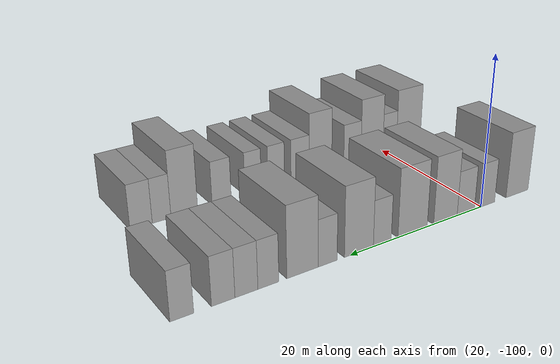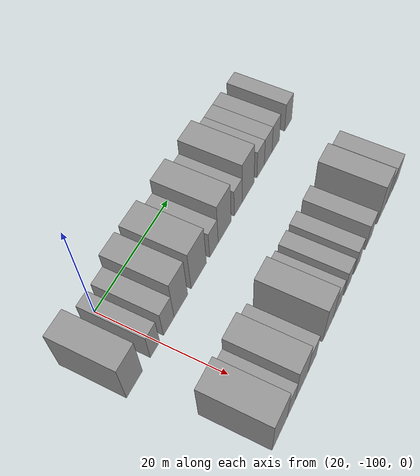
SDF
<sdf version="1.6">
 <world name="default">
  <model name="building_27">
   <static>1</static>
   <pose>25.0000 -106.3323 0 0.000000 0.000000 0.000000</pose>
   <link name="link">
    <pose>0 0 4.50 0 0 0</pose>
    <collision name="collision"><geometry><box><size>10.0000 3.9485 9.0000</size></box></geometry></collision>
    <visual name="visual">
     <cast_shadows>0</cast_shadows>
     <geometry><box><size>10.0000 3.9485 9.0000</size></box></geometry>
     <material>
      <script>
       <uri>model://grey_wall/materials/scripts</uri>
       <uri>model://grey_wall/materials/textures</uri>
       <name>vrc/grey_wall</name>
      </script>
     </material>
    </visual>
   </link>
  </model>
  <model name="building_28">
   <static>1</static>
   <pose>25.0000 -101.1371 0 0.000000 0.000000 0.000000</pose>
   <link name="link">
    <pose>0 0 3.00 0 0 0</pose>
    <collision name="collision"><geometry><box><size>10.0000 2.4418 6.0000</size></box></geometry></collision>
    <visual name="visual">
     <cast_shadows>0</cast_shadows>
     <geometry><box><size>10.0000 2.4418 6.0000</size></box></geometry>
     <material>
      <script>
       <uri>model://grey_wall/materials/scripts</uri>
       <uri>model://grey_wall/materials/textures</uri>
       <name>vrc/grey_wall</name>
      </script>
     </material>
    </visual>
   </link>
  </model>
  <model name="building_29">
   <static>1</static>
   <pose>25.0000 -97.4838 0 0.000000 0.000000 0.000000</pose>
   <link name="link">
    <pose>0 0 3.00 0 0 0</pose>
    <collision name="collision"><geometry><box><size>10.0000 2.8649 6.0000</size></box></geometry></collision>
    <visual name="visual">
     <cast_shadows>0</cast_shadows>
     <geometry><box><size>10.0000 2.8649 6.0000</size></box></geometry>
     <material>
      <script>
       <uri>model://grey_wall/materials/scripts</uri>
       <uri>model://grey_wall/materials/textures</uri>
       <name>vrc/grey_wall</name>
      </script>
     </material>
    </visual>
   </link>
  </model>
  <model name="building_30">
   <static>1</static>
   <pose>25.0000 -94.1622 0 0.000000 0.000000 0.000000</pose>
   <link name="link">
    <pose>0 0 4.50 0 0 0</pose>
    <collision name="collision"><geometry><box><size>10.0000 3.7783 9.0000</size></box></geometry></collision>
    <visual name="visual">
     <cast_shadows>0</cast_shadows>
     <geometry><box><size>10.0000 3.7783 9.0000</size></box></geometry>
     <material>
      <script>
       <uri>model://grey_wall/materials/scripts</uri>
       <uri>model://grey_wall/materials/textures</uri>
       <name>vrc/grey_wall</name>
      </script>
     </material>
    </visual>
   </link>
  </model>
  <model name="building_31">
   <static>1</static>
   <pose>25.0000 -89.0398 0 0.000000 0.000000 0.000000</pose>
   <link name="link">
    <pose>0 0 4.50 0 0 0</pose>
    <collision name="collision"><geometry><box><size>10.0000 4.4664 9.0000</size></box></geometry></collision>
    <visual name="visual">
     <cast_shadows>0</cast_shadows>
     <geometry><box><size>10.0000 4.4664 9.0000</size></box></geometry>
     <material>
      <script>
       <uri>model://grey_wall/materials/scripts</uri>
       <uri>model://grey_wall/materials/textures</uri>
       <name>vrc/grey_wall</name>
      </script>
     </material>
    </visual>
   </link>
  </model>
  <model name="building_32">
   <static>1</static>
   <pose>25.0000 -84.5046 0 0.000000 0.000000 0.000000</pose>
   <link name="link">
    <pose>0 0 3.00 0 0 0</pose>
    <collision name="collision"><geometry><box><size>10.0000 2.6039 6.0000</size></box></geometry></collision>
    <visual name="visual">
     <cast_shadows>0</cast_shadows>
     <geometry><box><size>10.0000 2.6039 6.0000</size></box></geometry>
     <material>
      <script>
       <uri>model://grey_wall/materials/scripts</uri>
       <uri>model://grey_wall/materials/textures</uri>
       <name>vrc/grey_wall</name>
      </script>
     </material>
    </visual>
   </link>
  </model>
  <model name="building_33">
   <static>1</static>
   <pose>25.0000 -81.1677 0 0.000000 0.000000 0.000000</pose>
   <link name="link">
    <pose>0 0 4.50 0 0 0</pose>
    <collision name="collision"><geometry><box><size>10.0000 4.0699 9.0000</size></box></geometry></collision>
    <visual name="visual">
     <cast_shadows>0</cast_shadows>
     <geometry><box><size>10.0000 4.0699 9.0000</size></box></geometry>
     <material>
      <script>
       <uri>model://grey_wall/materials/scripts</uri>
       <uri>model://grey_wall/materials/textures</uri>
       <name>vrc/grey_wall</name>
      </script>
     </material>
    </visual>
   </link>
  </model>
  <model name="building_34">
   <static>1</static>
   <pose>25.0000 -76.8595 0 0.000000 0.000000 0.000000</pose>
   <link name="link">
    <pose>0 0 3.00 0 0 0</pose>
    <collision name="collision"><geometry><box><size>10.0000 2.5464 6.0000</size></box></geometry></collision>
    <visual name="visual">
     <cast_shadows>0</cast_shadows>
     <geometry><box><size>10.0000 2.5464 6.0000</size></box></geometry>
     <material>
      <script>
       <uri>model://grey_wall/materials/scripts</uri>
       <uri>model://grey_wall/materials/textures</uri>
       <name>vrc/grey_wall</name>
      </script>
     </material>
    </visual>
   </link>
  </model>
  <model name="building_35">
   <static>1</static>
   <pose>25.0000 -73.5526 0 0.000000 0.000000 0.000000</pose>
   <link name="link">
    <pose>0 0 4.50 0 0 0</pose>
    <collision name="collision"><geometry><box><size>10.0000 4.0674 9.0000</size></box></geometry></collision>
    <visual name="visual">
     <cast_shadows>0</cast_shadows>
     <geometry><box><size>10.0000 4.0674 9.0000</size></box></geometry>
     <material>
      <script>
       <uri>model://grey_wall/materials/scripts</uri>
       <uri>model://grey_wall/materials/textures</uri>
       <name>vrc/grey_wall</name>
      </script>
     </material>
    </visual>
   </link>
  </model>
  <model name="building_36">
   <static>1</static>
   <pose>25.0000 -69.2227 0 0.000000 0.000000 0.000000</pose>
   <link name="link">
    <pose>0 0 3.00 0 0 0</pose>
    <collision name="collision"><geometry><box><size>10.0000 2.5924 6.0000</size></box></geometry></collision>
    <visual name="visual">
     <cast_shadows>0</cast_shadows>
     <geometry><box><size>10.0000 2.5924 6.0000</size></box></geometry>
     <material>
      <script>
       <uri>model://grey_wall/materials/scripts</uri>
       <uri>model://grey_wall/materials/textures</uri>
       <name>vrc/grey_wall</name>
      </script>
     </material>
    </visual>
   </link>
  </model>
  <model name="building_37">
   <static>1</static>
   <pose>25.0000 -66.5518 0 0.000000 0.000000 0.000000</pose>
   <link name="link">
    <pose>0 0 3.00 0 0 0</pose>
    <collision name="collision"><geometry><box><size>10.0000 2.7495 6.0000</size></box></geometry></collision>
    <visual name="visual">
     <cast_shadows>0</cast_shadows>
     <geometry><box><size>10.0000 2.7495 6.0000</size></box></geometry>
     <material>
      <script>
       <uri>model://grey_wall/materials/scripts</uri>
       <uri>model://grey_wall/materials/textures</uri>
       <name>vrc/grey_wall</name>
      </script>
     </material>
    </visual>
   </link>
  </model>
  <model name="building_38">
   <static>1</static>
   <pose>25.0000 -63.8082 0 0.000000 0.000000 0.000000</pose>
   <link name="link">
    <pose>0 0 3.00 0 0 0</pose>
    <collision name="collision"><geometry><box><size>10.0000 2.7377 6.0000</size></box></geometry></collision>
    <visual name="visual">
     <cast_shadows>0</cast_shadows>
     <geometry><box><size>10.0000 2.7377 6.0000</size></box></geometry>
     <material>
      <script>
       <uri>model://grey_wall/materials/scripts</uri>
       <uri>model://grey_wall/materials/textures</uri>
       <name>vrc/grey_wall</name>
      </script>
     </material>
    </visual>
   </link>
  </model>
  <model name="building_39">
   <static>1</static>
   <pose>25.0000 -59.1197 0 0.000000 0.000000 0.000000</pose>
   <link name="link">
    <pose>0 0 3.00 0 0 0</pose>
    <collision name="collision"><geometry><box><size>10.0000 2.6392 6.0000</size></box></geometry></collision>
    <visual name="visual">
     <cast_shadows>0</cast_shadows>
     <geometry><box><size>10.0000 2.6392 6.0000</size></box></geometry>
     <material>
      <script>
       <uri>model://grey_wall/materials/scripts</uri>
       <uri>model://grey_wall/materials/textures</uri>
       <name>vrc/grey_wall</name>
      </script>
     </material>
    </visual>
   </link>
  </model>
  <model name="building_126">
   <static>1</static>
   <pose>44.0000 -103.9873 0 0.000000 0.000000 0.000000</pose>
   <link name="link">
    <pose>0 0 4.50 0 0 0</pose>
    <collision name="collision"><geometry><box><size>10.0000 4.4068 9.0000</size></box></geometry></collision>
    <visual name="visual">
     <cast_shadows>0</cast_shadows>
     <geometry><box><size>10.0000 4.4068 9.0000</size></box></geometry>
     <material>
      <script>
       <uri>model://grey_wall/materials/scripts</uri>
       <uri>model://grey_wall/materials/textures</uri>
       <name>vrc/grey_wall</name>
      </script>
     </material>
    </visual>
   </link>
  </model>
  <model name="building_127">
   <static>1</static>
   <pose>44.0000 -100.5701 0 0.000000 0.000000 0.000000</pose>
   <link name="link">
    <pose>0 0 3.00 0 0 0</pose>
    <collision name="collision"><geometry><box><size>10.0000 2.4276 6.0000</size></box></geometry></collision>
    <visual name="visual">
     <cast_shadows>0</cast_shadows>
     <geometry><box><size>10.0000 2.4276 6.0000</size></box></geometry>
     <material>
      <script>
       <uri>model://grey_wall/materials/scripts</uri>
       <uri>model://grey_wall/materials/textures</uri>
       <name>vrc/grey_wall</name>
      </script>
     </material>
    </visual>
   </link>
  </model>
  <model name="building_128">
   <static>1</static>
   <pose>44.0000 -97.4337 0 0.000000 0.000000 0.000000</pose>
   <link name="link">
    <pose>0 0 4.50 0 0 0</pose>
    <collision name="collision"><geometry><box><size>10.0000 3.8451 9.0000</size></box></geometry></collision>
    <visual name="visual">
     <cast_shadows>0</cast_shadows>
     <geometry><box><size>10.0000 3.8451 9.0000</size></box></geometry>
     <material>
      <script>
       <uri>model://grey_wall/materials/scripts</uri>
       <uri>model://grey_wall/materials/textures</uri>
       <name>vrc/grey_wall</name>
      </script>
     </material>
    </visual>
   </link>
  </model>
  <model name="building_129">
   <static>1</static>
   <pose>44.0000 -94.0550 0 0.000000 0.000000 0.000000</pose>
   <link name="link">
    <pose>0 0 3.00 0 0 0</pose>
    <collision name="collision"><geometry><box><size>10.0000 2.9124 6.0000</size></box></geometry></collision>
    <visual name="visual">
     <cast_shadows>0</cast_shadows>
     <geometry><box><size>10.0000 2.9124 6.0000</size></box></geometry>
     <material>
      <script>
       <uri>model://grey_wall/materials/scripts</uri>
       <uri>model://grey_wall/materials/textures</uri>
       <name>vrc/grey_wall</name>
      </script>
     </material>
    </visual>
   </link>
  </model>
  <model name="building_130">
   <static>1</static>
   <pose>44.0000 -88.7741 0 0.000000 0.000000 0.000000</pose>
   <link name="link">
    <pose>0 0 4.50 0 0 0</pose>
    <collision name="collision"><geometry><box><size>10.0000 3.6493 9.0000</size></box></geometry></collision>
    <visual name="visual">
     <cast_shadows>0</cast_shadows>
     <geometry><box><size>10.0000 3.6493 9.0000</size></box></geometry>
     <material>
      <script>
       <uri>model://grey_wall/materials/scripts</uri>
       <uri>model://grey_wall/materials/textures</uri>
       <name>vrc/grey_wall</name>
      </script>
     </material>
    </visual>
   </link>
  </model>
  <model name="building_131">
   <static>1</static>
   <pose>44.0000 -85.5106 0 0.000000 0.000000 0.000000</pose>
   <link name="link">
    <pose>0 0 3.00 0 0 0</pose>
    <collision name="collision"><geometry><box><size>10.0000 2.8778 6.0000</size></box></geometry></collision>
    <visual name="visual">
     <cast_shadows>0</cast_shadows>
     <geometry><box><size>10.0000 2.8778 6.0000</size></box></geometry>
     <material>
      <script>
       <uri>model://grey_wall/materials/scripts</uri>
       <uri>model://grey_wall/materials/textures</uri>
       <name>vrc/grey_wall</name>
      </script>
     </material>
    </visual>
   </link>
  </model>
  <model name="building_132">
   <static>1</static>
   <pose>44.0000 -81.8057 0 0.000000 0.000000 0.000000</pose>
   <link name="link">
    <pose>0 0 3.00 0 0 0</pose>
    <collision name="collision"><geometry><box><size>10.0000 2.5320 6.0000</size></box></geometry></collision>
    <visual name="visual">
     <cast_shadows>0</cast_shadows>
     <geometry><box><size>10.0000 2.5320 6.0000</size></box></geometry>
     <material>
      <script>
       <uri>model://grey_wall/materials/scripts</uri>
       <uri>model://grey_wall/materials/textures</uri>
       <name>vrc/grey_wall</name>
      </script>
     </material>
    </visual>
   </link>
  </model>
  <model name="building_133">
   <static>1</static>
   <pose>44.0000 -78.3301 0 0.000000 0.000000 0.000000</pose>
   <link name="link">
    <pose>0 0 3.00 0 0 0</pose>
    <collision name="collision"><geometry><box><size>10.0000 2.4192 6.0000</size></box></geometry></collision>
    <visual name="visual">
     <cast_shadows>0</cast_shadows>
     <geometry><box><size>10.0000 2.4192 6.0000</size></box></geometry>
     <material>
      <script>
       <uri>model://grey_wall/materials/scripts</uri>
       <uri>model://grey_wall/materials/textures</uri>
       <name>vrc/grey_wall</name>
      </script>
     </material>
    </visual>
   </link>
  </model>
  <model name="building_134">
   <static>1</static>
   <pose>44.0000 -73.7608 0 0.000000 0.000000 0.000000</pose>
   <link name="link">
    <pose>0 0 3.00 0 0 0</pose>
    <collision name="collision"><geometry><box><size>10.0000 2.7195 6.0000</size></box></geometry></collision>
    <visual name="visual">
     <cast_shadows>0</cast_shadows>
     <geometry><box><size>10.0000 2.7195 6.0000</size></box></geometry>
     <material>
      <script>
       <uri>model://grey_wall/materials/scripts</uri>
       <uri>model://grey_wall/materials/textures</uri>
       <name>vrc/grey_wall</name>
      </script>
     </material>
    </visual>
   </link>
  </model>
  <model name="building_135">
   <static>1</static>
   <pose>44.0000 -68.5990 0 0.000000 0.000000 0.000000</pose>
   <link name="link">
    <pose>0 0 4.50 0 0 0</pose>
    <collision name="collision"><geometry><box><size>10.0000 3.6041 9.0000</size></box></geometry></collision>
    <visual name="visual">
     <cast_shadows>0</cast_shadows>
     <geometry><box><size>10.0000 3.6041 9.0000</size></box></geometry>
     <material>
      <script>
       <uri>model://grey_wall/materials/scripts</uri>
       <uri>model://grey_wall/materials/textures</uri>
       <name>vrc/grey_wall</name>
      </script>
     </material>
    </visual>
   </link>
  </model>
  <model name="building_136">
   <static>1</static>
   <pose>44.0000 -65.5714 0 0.000000 0.000000 0.000000</pose>
   <link name="link">
    <pose>0 0 3.00 0 0 0</pose>
    <collision name="collision"><geometry><box><size>10.0000 2.4511 6.0000</size></box></geometry></collision>
    <visual name="visual">
     <cast_shadows>0</cast_shadows>
     <geometry><box><size>10.0000 2.4511 6.0000</size></box></geometry>
     <material>
      <script>
       <uri>model://grey_wall/materials/scripts</uri>
       <uri>model://grey_wall/materials/textures</uri>
       <name>vrc/grey_wall</name>
      </script>
     </material>
    </visual>
   </link>
  </model>
  <model name="building_137">
   <static>1</static>
   <pose>44.0000 -62.9184 0 0.000000 0.000000 0.000000</pose>
   <link name="link">
    <pose>0 0 3.00 0 0 0</pose>
    <collision name="collision"><geometry><box><size>10.0000 2.8548 6.0000</size></box></geometry></collision>
    <visual name="visual">
     <cast_shadows>0</cast_shadows>
     <geometry><box><size>10.0000 2.8548 6.0000</size></box></geometry>
     <material>
      <script>
       <uri>model://grey_wall/materials/scripts</uri>
       <uri>model://grey_wall/materials/textures</uri>
       <name>vrc/grey_wall</name>
      </script>
     </material>
    </visual>
   </link>
  </model>
 </world>
</sdf>
